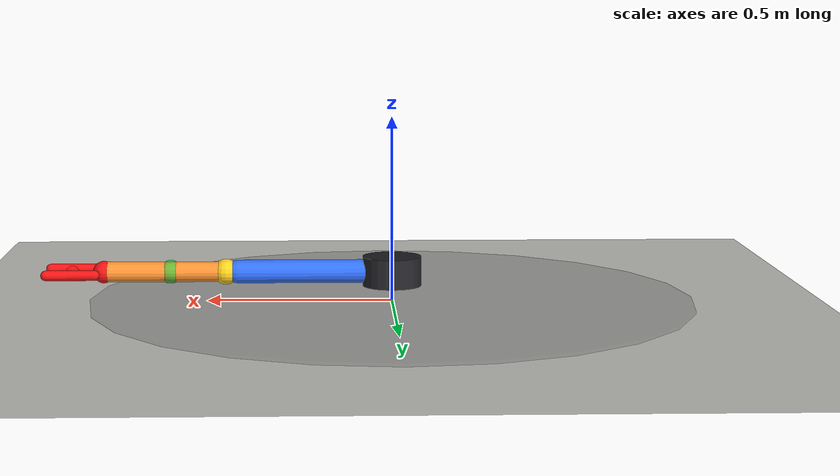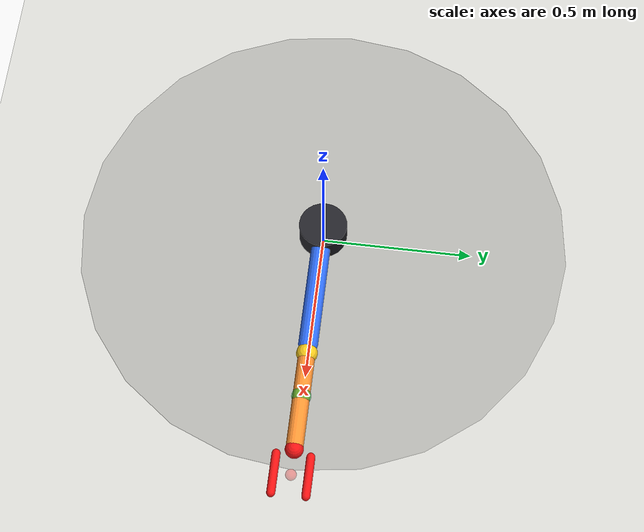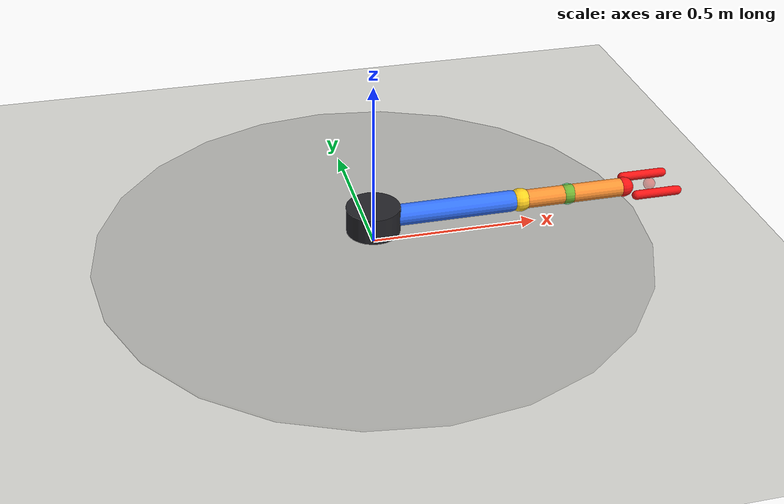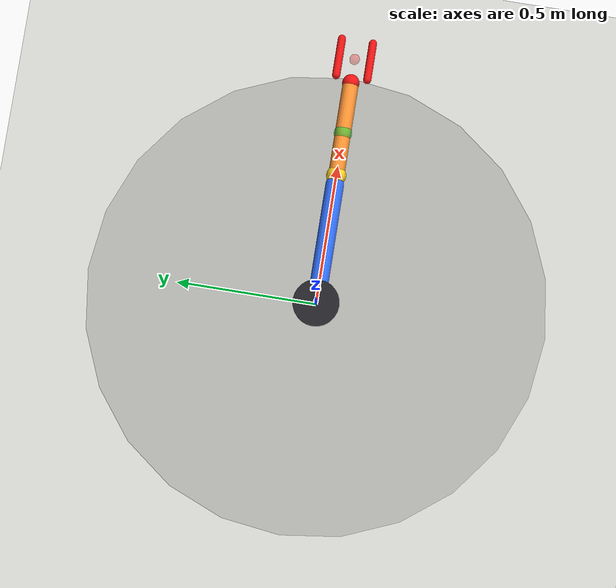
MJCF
<mujoco model="two_link_arm_gripper_ball">
  <compiler angle="radian"/>

  <option timestep="0.002" gravity="0 0 0"/>

  <default>
    <joint damping="0.25" armature="0.02"/>
    <geom friction="1 0.005 0.0001" contype="0" conaffinity="0"/>
  </default>

  <worldbody>
    <light pos="0 0 2.5" dir="0 0 -1"/>

    <geom
      name="table"
      type="plane"
      pos="0 0 -0.02"
      size="1.2 1.2 0.02"
      rgba="0.84 0.84 0.82 1"/>

    <geom
      name="workspace"
      type="cylinder"
      pos="0 0 0.0"
      size="0.82 0.004"
      rgba="0.18 0.18 0.18 0.18"/>

    <site
      name="ball_site"
      type="sphere"
      pos="0.45 0.00 0.08"
      size="0.035"
      rgba="1.00 0.82 0.12 1"/>

    <site
      name="target_site"
      type="sphere"
      pos="0.60 0.00 0.08"
      size="0.032"
      rgba="0.05 0.85 0.25 0.55"/>

    <body name="base" pos="0 0 0.08">
      <geom
        name="base_geom"
        type="cylinder"
        size="0.08 0.04"
        rgba="0.14 0.14 0.16 1"/>

      <body name="upper_arm" pos="0 0 0">
        <joint
          name="shoulder"
          type="hinge"
          axis="0 0 1"
          limited="false"/>
        <geom
          name="upper_arm_geom"
          type="capsule"
          fromto="0 0 0 0.42 0 0"
          size="0.032"
          mass="0.5"
          rgba="0.20 0.45 1.0 1"/>

        <body name="forearm" pos="0.42 0 0">
          <joint
            name="elbow"
            type="hinge"
            axis="0 0 1"
            limited="false"/>
          <geom
            name="forearm_geom"
            type="capsule"
            fromto="0 0 0 0.36 0 0"
            size="0.028"
            mass="0.35"
            rgba="1.0 0.58 0.20 1"/>

          <body name="gripper" pos="0.36 0 0">
            <geom
              name="palm_geom"
              type="sphere"
              pos="0 0 0"
              size="0.030"
              mass="0.06"
              rgba="0.95 0.08 0.08 1"/>
            <geom
              name="left_finger_geom"
              type="capsule"
              fromto="0.02 0.055 0 0.15 0.055 0"
              size="0.014"
              mass="0.035"
              rgba="0.95 0.08 0.08 1"/>
            <geom
              name="right_finger_geom"
              type="capsule"
              fromto="0.02 -0.055 0 0.15 -0.055 0"
              size="0.014"
              mass="0.035"
              rgba="0.95 0.08 0.08 1"/>
            <site
              name="gripper_center"
              type="sphere"
              pos="0.085 0 0"
              size="0.018"
              rgba="0.95 0.08 0.08 0.35"/>
          </body>
        </body>
      </body>
    </body>
  </worldbody>

  <actuator>
    <motor
      name="shoulder_motor"
      joint="shoulder"
      gear="1"
      ctrllimited="true"
      ctrlrange="-3 3"/>
    <motor
      name="elbow_motor"
      joint="elbow"
      gear="1"
      ctrllimited="true"
      ctrlrange="-3 3"/>
  </actuator>
</mujoco>
